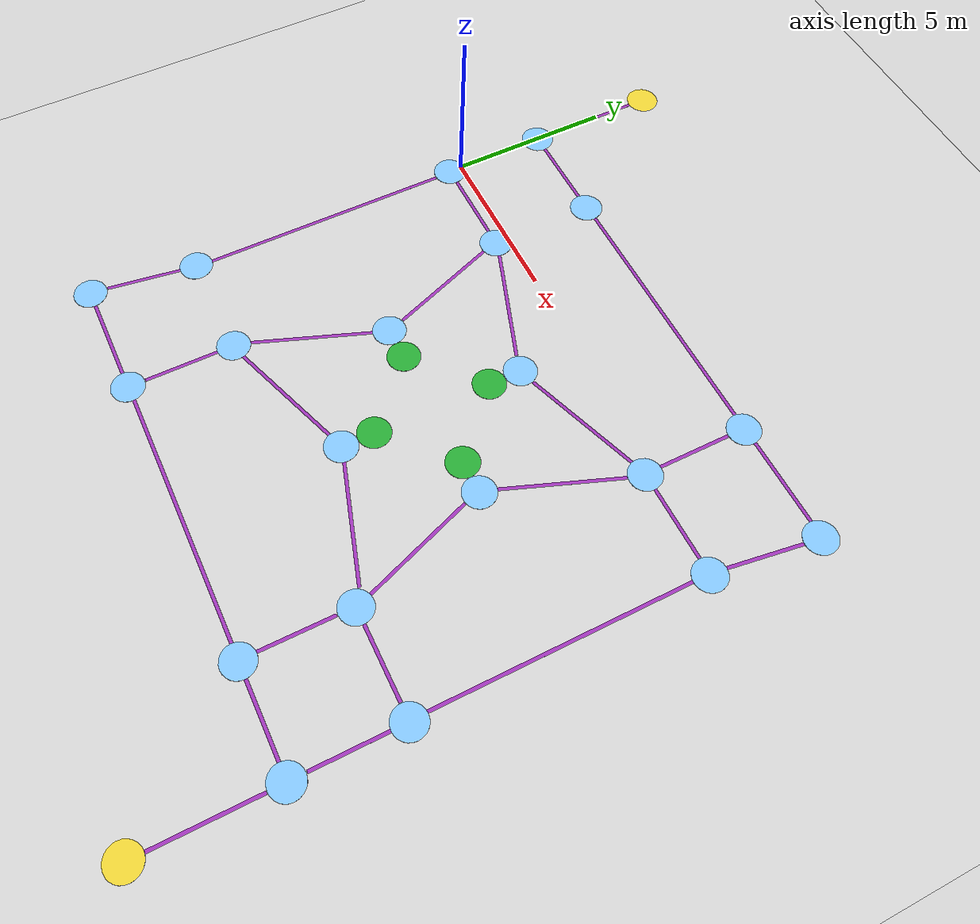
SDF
<sdf version="1.6">
 <world name="default">
  <scene><ambient>0.4 0.4 0.4 1</ambient><background>0.7 0.7 0.7 1</background><shadows>1</shadows></scene>
  <light name="sun" type="directional">
   <pose>0 0 10 0 -0 0</pose>
   <diffuse>0.8 0.8 0.8 1</diffuse>
   <specular>0.2 0.2 0.2 1</specular>
   <attenuation>
    <range>1000</range>
    <constant>0.9</constant>
    <linear>0.01</linear>
    <quadratic>0.001</quadratic>
   </attenuation>
   <direction>-0.5 0.1 -0.9</direction>
  </light>
  <model name="ground_plane">
   <static>1</static>
   <link name="link">
    <collision name="collision">
     <geometry><plane><normal>0 0 1</normal><size>100 100</size></plane></geometry>
     <surface>
      <contact><collide_bitmask>65535</collide_bitmask></contact>
      <friction><ode><mu>100</mu><mu2>50</mu2></ode></friction>
     </surface>
    </collision>
    <visual name="visual">
     <cast_shadows>0</cast_shadows>
     <geometry><plane><normal>0 0 1</normal><size>100 100</size></plane></geometry>
     <material>
      <script><uri>file://media/materials/scripts/gazebo.material</uri><name>Gazebo/Grey</name></script>
     </material>
    </visual>
   </link>
  </model>
  <physics name="default_physics" default="0" type="ode">
   <real_time_update_rate>1000</real_time_update_rate>
   <max_step_size>0.001</max_step_size>
   <real_time_factor>1</real_time_factor>
   <ode>
    <solver>
     <type>quick</type>
     <iters>150</iters>
     <precon_iters>0</precon_iters>
     <sor>1.4</sor>
     <use_dynamic_moi_rescaling>1</use_dynamic_moi_rescaling>
    </solver>
    <constraints>
     <cfm>1e-05</cfm>
     <erp>0.2</erp>
     <contact_max_correcting_vel>2000</contact_max_correcting_vel>
     <contact_surface_layer>0.01</contact_surface_layer>
    </constraints>
   </ode>
  </physics>
  <gravity>0 0 -9.8</gravity>
  <magnetic_field>6e-06 2.3e-05 -4.2e-05</magnetic_field>
  <atmosphere type="adiabatic"/>
  <audio><device>default</device></audio>
  <spherical_coordinates>
   <surface_model>EARTH_WGS84</surface_model>
   <latitude_deg>0</latitude_deg>
   <longitude_deg>0</longitude_deg>
   <elevation>0</elevation>
   <heading_deg>0</heading_deg>
  </spherical_coordinates>
  <model name="u1">
   <static>1</static>
   <pose>0 6.8 0 0 -0 0</pose>
   <link name="link">
    <inertial>
     <mass>1</mass>
     <inertia><ixx>0.145833</ixx><ixy>0</ixy><ixz>0</ixz><iyy>0.145833</iyy><iyz>0</iyz><izz>0.125</izz></inertia>
    </inertial>
    <collision name="collision">
     <geometry><cylinder><radius>0</radius><length>0</length></cylinder></geometry>
    </collision>
    <visual name="visual">
     <geometry><cylinder><radius>0.5</radius><length>9.555e-05</length></cylinder></geometry>
     <material>
      <script><name>Gazebo/ZincYellow</name><uri>file://media/materials/scripts/gazebo.material</uri></script>
     </material>
    </visual>
   </link>
  </model>
  <model name="u2">
   <static>1</static>
   <pose>15.2 -16.2 0 0 -0 0</pose>
   <link name="link">
    <inertial>
     <mass>1</mass>
     <inertia><ixx>0.145833</ixx><ixy>0</ixy><ixz>0</ixz><iyy>0.145833</iyy><iyz>0</iyz><izz>0.125</izz></inertia>
    </inertial>
    <collision name="collision">
     <geometry><cylinder><radius>0</radius><length>0</length></cylinder></geometry>
    </collision>
    <visual name="visual">
     <geometry><cylinder><radius>0.5</radius><length>0.006</length></cylinder></geometry>
     <material>
      <script><name>Gazebo/ZincYellow</name><uri>file://media/materials/scripts/gazebo.material</uri></script>
     </material>
    </visual>
   </link>
  </model>
  <model name="4">
   <static>1</static>
   <pose>0 2.8 0 0 -0 0</pose>
   <link name="link">
    <inertial>
     <mass>1</mass>
     <inertia><ixx>0.145833</ixx><ixy>0</ixy><ixz>0</ixz><iyy>0.145833</iyy><iyz>0</iyz><izz>0.125</izz></inertia>
    </inertial>
    <collision name="collision">
     <geometry><cylinder><radius>0</radius><length>0</length></cylinder></geometry>
    </collision>
    <visual name="visual">
     <geometry><cylinder><radius>0.5</radius><length>9.8418e-05</length></cylinder></geometry>
     <material>
      <script><name>Gazebo/SkyBlue</name><uri>file://media/materials/scripts/gazebo.material</uri></script>
     </material>
    </visual>
   </link>
  </model>
  <model name="5">
   <static>1</static>
   <pose>3.2 2.8 0 0 -0 0</pose>
   <link name="link">
    <inertial>
     <mass>1</mass>
     <inertia><ixx>0.145833</ixx><ixy>0</ixy><ixz>0</ixz><iyy>0.145833</iyy><iyz>0</iyz><izz>0.125</izz></inertia>
    </inertial>
    <collision name="collision">
     <geometry><cylinder><radius>0</radius><length>0</length></cylinder></geometry>
    </collision>
    <visual name="visual">
     <geometry><cylinder><radius>0.5</radius><length>0.006</length></cylinder></geometry>
     <material>
      <script><name>Gazebo/SkyBlue</name><uri>file://media/materials/scripts/gazebo.material</uri></script>
     </material>
    </visual>
   </link>
  </model>
  <model name="6">
   <static>1</static>
   <pose>12 2.8 0 0 -0 0</pose>
   <link name="link">
    <inertial>
     <mass>1</mass>
     <inertia><ixx>0.145833</ixx><ixy>0</ixy><ixz>0</ixz><iyy>0.145833</iyy><iyz>0</iyz><izz>0.125</izz></inertia>
    </inertial>
    <collision name="collision">
     <geometry><cylinder><radius>0</radius><length>0</length></cylinder></geometry>
    </collision>
    <visual name="visual">
     <geometry><cylinder><radius>0.5</radius><length>0.006</length></cylinder></geometry>
     <material>
      <script><name>Gazebo/SkyBlue</name><uri>file://media/materials/scripts/gazebo.material</uri></script>
     </material>
    </visual>
   </link>
  </model>
  <model name="7">
   <static>1</static>
   <pose>15.6 2.8 0 0 -0 0</pose>
   <link name="link">
    <inertial>
     <mass>1</mass>
     <inertia><ixx>0.145833</ixx><ixy>0</ixy><ixz>0</ixz><iyy>0.145833</iyy><iyz>0</iyz><izz>0.125</izz></inertia>
    </inertial>
    <collision name="collision">
     <geometry><cylinder><radius>0</radius><length>0</length></cylinder></geometry>
    </collision>
    <visual name="visual">
     <geometry><cylinder><radius>0.5</radius><length>0.006</length></cylinder></geometry>
     <material>
      <script><name>Gazebo/SkyBlue</name><uri>file://media/materials/scripts/gazebo.material</uri></script>
     </material>
    </visual>
   </link>
  </model>
  <model name="8">
   <static>1</static>
   <pose>15.2 -0.4 0 0 -0 0</pose>
   <link name="link">
    <inertial>
     <mass>1</mass>
     <inertia><ixx>0.145833</ixx><ixy>0</ixy><ixz>0</ixz><iyy>0.145833</iyy><iyz>0</iyz><izz>0.125</izz></inertia>
    </inertial>
    <collision name="collision">
     <geometry><cylinder><radius>0</radius><length>0</length></cylinder></geometry>
    </collision>
    <visual name="visual">
     <geometry><cylinder><radius>0.5</radius><length>0.006</length></cylinder></geometry>
     <material>
      <script><name>Gazebo/SkyBlue</name><uri>file://media/materials/scripts/gazebo.material</uri></script>
     </material>
    </visual>
   </link>
  </model>
  <model name="9">
   <static>1</static>
   <pose>15.2 -9 0 0 -0 0</pose>
   <link name="link">
    <inertial>
     <mass>1</mass>
     <inertia><ixx>0.145833</ixx><ixy>0</ixy><ixz>0</ixz><iyy>0.145833</iyy><iyz>0</iyz><izz>0.125</izz></inertia>
    </inertial>
    <collision name="collision">
     <geometry><cylinder><radius>0</radius><length>0</length></cylinder></geometry>
    </collision>
    <visual name="visual">
     <geometry><cylinder><radius>0.5</radius><length>0.006</length></cylinder></geometry>
     <material>
      <script><name>Gazebo/SkyBlue</name><uri>file://media/materials/scripts/gazebo.material</uri></script>
     </material>
    </visual>
   </link>
  </model>
  <model name="10">
   <static>1</static>
   <pose>15.2 -12.2 0 0 -0 0</pose>
   <link name="link">
    <inertial>
     <mass>1</mass>
     <inertia><ixx>0.145833</ixx><ixy>0</ixy><ixz>0</ixz><iyy>0.145833</iyy><iyz>0</iyz><izz>0.125</izz></inertia>
    </inertial>
    <collision name="collision">
     <geometry><cylinder><radius>0</radius><length>0</length></cylinder></geometry>
    </collision>
    <visual name="visual">
     <geometry><cylinder><radius>0.5</radius><length>0.006</length></cylinder></geometry>
     <material>
      <script><name>Gazebo/SkyBlue</name><uri>file://media/materials/scripts/gazebo.material</uri></script>
     </material>
    </visual>
   </link>
  </model>
  <model name="11">
   <static>1</static>
   <pose>12 -12.2 0 0 -0 0</pose>
   <link name="link">
    <inertial>
     <mass>1</mass>
     <inertia><ixx>0.145833</ixx><ixy>0</ixy><ixz>0</ixz><iyy>0.145833</iyy><iyz>0</iyz><izz>0.125</izz></inertia>
    </inertial>
    <collision name="collision">
     <geometry><cylinder><radius>0</radius><length>0</length></cylinder></geometry>
    </collision>
    <visual name="visual">
     <geometry><cylinder><radius>0.5</radius><length>0.006</length></cylinder></geometry>
     <material>
      <script><name>Gazebo/SkyBlue</name><uri>file://media/materials/scripts/gazebo.material</uri></script>
     </material>
    </visual>
   </link>
  </model>
  <model name="12">
   <static>1</static>
   <pose>3.2 -12.2 0 0 -0 0</pose>
   <link name="link">
    <inertial>
     <mass>1</mass>
     <inertia><ixx>0.145833</ixx><ixy>0</ixy><ixz>0</ixz><iyy>0.145833</iyy><iyz>0</iyz><izz>0.125</izz></inertia>
    </inertial>
    <collision name="collision">
     <geometry><cylinder><radius>0</radius><length>0</length></cylinder></geometry>
    </collision>
    <visual name="visual">
     <geometry><cylinder><radius>0.5</radius><length>0.006</length></cylinder></geometry>
     <material>
      <script><name>Gazebo/SkyBlue</name><uri>file://media/materials/scripts/gazebo.material</uri></script>
     </material>
    </visual>
   </link>
  </model>
  <model name="1">
   <static>1</static>
   <pose>-0.4 -12.2 0 0 -0 0</pose>
   <link name="link">
    <inertial>
     <mass>1</mass>
     <inertia><ixx>0.145833</ixx><ixy>0</ixy><ixz>0</ixz><iyy>0.145833</iyy><iyz>0</iyz><izz>0.125</izz></inertia>
    </inertial>
    <collision name="collision">
     <geometry><cylinder><radius>0</radius><length>0</length></cylinder></geometry>
    </collision>
    <visual name="visual">
     <geometry><cylinder><radius>0.5</radius><length>0.006</length></cylinder></geometry>
     <material>
      <script><name>Gazebo/SkyBlue</name><uri>file://media/materials/scripts/gazebo.material</uri></script>
     </material>
    </visual>
   </link>
  </model>
  <model name="2">
   <static>1</static>
   <pose>0 -9 0 0 -0 0</pose>
   <link name="link">
    <inertial>
     <mass>1</mass>
     <inertia><ixx>0.145833</ixx><ixy>0</ixy><ixz>0</ixz><iyy>0.145833</iyy><iyz>0</iyz><izz>0.125</izz></inertia>
    </inertial>
    <collision name="collision">
     <geometry><cylinder><radius>0</radius><length>0</length></cylinder></geometry>
    </collision>
    <visual name="visual">
     <geometry><cylinder><radius>0.5</radius><length>0.006</length></cylinder></geometry>
     <material>
      <script><name>Gazebo/SkyBlue</name><uri>file://media/materials/scripts/gazebo.material</uri></script>
     </material>
    </visual>
   </link>
  </model>
  <model name="3">
   <static>1</static>
   <pose>0 -0.4 0 0 -0 0</pose>
   <link name="link">
    <inertial>
     <mass>1</mass>
     <inertia><ixx>0.145833</ixx><ixy>0</ixy><ixz>0</ixz><iyy>0.145833</iyy><iyz>0</iyz><izz>0.125</izz></inertia>
    </inertial>
    <collision name="collision">
     <geometry><cylinder><radius>0</radius><length>0</length></cylinder></geometry>
    </collision>
    <visual name="visual">
     <geometry><cylinder><radius>0.5</radius><length>0.006</length></cylinder></geometry>
     <material>
      <script><name>Gazebo/SkyBlue</name><uri>file://media/materials/scripts/gazebo.material</uri></script>
     </material>
    </visual>
   </link>
  </model>
  <model name="21">
   <static>1</static>
   <pose>3.2 -9 0 0 -0 0</pose>
   <link name="link">
    <inertial>
     <mass>1</mass>
     <inertia><ixx>0.145833</ixx><ixy>0</ixy><ixz>0</ixz><iyy>0.145833</iyy><iyz>0</iyz><izz>0.125</izz></inertia>
    </inertial>
    <collision name="collision">
     <geometry><cylinder><radius>0</radius><length>0</length></cylinder></geometry>
    </collision>
    <visual name="visual">
     <geometry><cylinder><radius>0.5</radius><length>0.006</length></cylinder></geometry>
     <material>
      <script><name>Gazebo/SkyBlue</name><uri>file://media/materials/scripts/gazebo.material</uri></script>
     </material>
    </visual>
   </link>
  </model>
  <model name="22">
   <static>1</static>
   <pose>7.6 -7.5 0 0 -0 0</pose>
   <link name="link">
    <inertial>
     <mass>1</mass>
     <inertia><ixx>0.145833</ixx><ixy>0</ixy><ixz>0</ixz><iyy>0.145833</iyy><iyz>0</iyz><izz>0.125</izz></inertia>
    </inertial>
    <collision name="collision">
     <geometry><cylinder><radius>0</radius><length>0</length></cylinder></geometry>
    </collision>
    <visual name="visual">
     <geometry><cylinder><radius>0.5</radius><length>0.006</length></cylinder></geometry>
     <material>
      <script><name>Gazebo/SkyBlue</name><uri>file://media/materials/scripts/gazebo.material</uri></script>
     </material>
    </visual>
   </link>
  </model>
  <model name="23">
   <static>1</static>
   <pose>12 -9 0 0 -0 0</pose>
   <link name="link">
    <inertial>
     <mass>1</mass>
     <inertia><ixx>0.145833</ixx><ixy>0</ixy><ixz>0</ixz><iyy>0.145833</iyy><iyz>0</iyz><izz>0.125</izz></inertia>
    </inertial>
    <collision name="collision">
     <geometry><cylinder><radius>0</radius><length>0</length></cylinder></geometry>
    </collision>
    <visual name="visual">
     <geometry><cylinder><radius>0.5</radius><length>0.006</length></cylinder></geometry>
     <material>
      <script><name>Gazebo/SkyBlue</name><uri>file://media/materials/scripts/gazebo.material</uri></script>
     </material>
    </visual>
   </link>
  </model>
  <model name="24">
   <static>1</static>
   <pose>10.5 -4.7 0 0 -0 0</pose>
   <link name="link">
    <inertial>
     <mass>1</mass>
     <inertia><ixx>0.145833</ixx><ixy>0</ixy><ixz>0</ixz><iyy>0.145833</iyy><iyz>0</iyz><izz>0.125</izz></inertia>
    </inertial>
    <collision name="collision">
     <geometry><cylinder><radius>0</radius><length>0</length></cylinder></geometry>
    </collision>
    <visual name="visual">
     <geometry><cylinder><radius>0.5</radius><length>0.006</length></cylinder></geometry>
     <material>
      <script><name>Gazebo/SkyBlue</name><uri>file://media/materials/scripts/gazebo.material</uri></script>
     </material>
    </visual>
   </link>
  </model>
  <model name="25">
   <static>1</static>
   <pose>12 -0.4 0 0 -0 0</pose>
   <link name="link">
    <inertial>
     <mass>1</mass>
     <inertia><ixx>0.145833</ixx><ixy>0</ixy><ixz>0</ixz><iyy>0.145833</iyy><iyz>0</iyz><izz>0.125</izz></inertia>
    </inertial>
    <collision name="collision">
     <geometry><cylinder><radius>0</radius><length>0</length></cylinder></geometry>
    </collision>
    <visual name="visual">
     <geometry><cylinder><radius>0.5</radius><length>0.006</length></cylinder></geometry>
     <material>
      <script><name>Gazebo/SkyBlue</name><uri>file://media/materials/scripts/gazebo.material</uri></script>
     </material>
    </visual>
   </link>
  </model>
  <model name="26">
   <static>1</static>
   <pose>7.6 -1.9 0 0 -0 0</pose>
   <link name="link">
    <inertial>
     <mass>1</mass>
     <inertia><ixx>0.145833</ixx><ixy>0</ixy><ixz>0</ixz><iyy>0.145833</iyy><iyz>0</iyz><izz>0.125</izz></inertia>
    </inertial>
    <collision name="collision">
     <geometry><cylinder><radius>0</radius><length>0</length></cylinder></geometry>
    </collision>
    <visual name="visual">
     <geometry><cylinder><radius>0.5</radius><length>0.006</length></cylinder></geometry>
     <material>
      <script><name>Gazebo/SkyBlue</name><uri>file://media/materials/scripts/gazebo.material</uri></script>
     </material>
    </visual>
   </link>
  </model>
  <model name="27">
   <static>1</static>
   <pose>3.2 -0.4 0 0 -0 0</pose>
   <link name="link">
    <inertial>
     <mass>1</mass>
     <inertia><ixx>0.145833</ixx><ixy>0</ixy><ixz>0</ixz><iyy>0.145833</iyy><iyz>0</iyz><izz>0.125</izz></inertia>
    </inertial>
    <collision name="collision">
     <geometry><cylinder><radius>0</radius><length>0</length></cylinder></geometry>
    </collision>
    <visual name="visual">
     <geometry><cylinder><radius>0.5</radius><length>0.006</length></cylinder></geometry>
     <material>
      <script><name>Gazebo/SkyBlue</name><uri>file://media/materials/scripts/gazebo.material</uri></script>
     </material>
    </visual>
   </link>
  </model>
  <model name="28">
   <static>1</static>
   <pose>4.7 -4.7 0 0 -0 0</pose>
   <link name="link">
    <inertial>
     <mass>1</mass>
     <inertia><ixx>0.145833</ixx><ixy>0</ixy><ixz>0</ixz><iyy>0.145833</iyy><iyz>0</iyz><izz>0.125</izz></inertia>
    </inertial>
    <collision name="collision">
     <geometry><cylinder><radius>0</radius><length>0</length></cylinder></geometry>
    </collision>
    <visual name="visual">
     <geometry><cylinder><radius>0.5</radius><length>0.006</length></cylinder></geometry>
     <material>
      <script><name>Gazebo/SkyBlue</name><uri>file://media/materials/scripts/gazebo.material</uri></script>
     </material>
    </visual>
   </link>
  </model>
  <model name="g1">
   <static>1</static>
   <pose>7.6 -6.5 0 0 -0 0</pose>
   <link name="link">
    <inertial>
     <mass>1</mass>
     <inertia><ixx>0.145833</ixx><ixy>0</ixy><ixz>0</ixz><iyy>0.145833</iyy><iyz>0</iyz><izz>0.125</izz></inertia>
    </inertial>
    <collision name="collision">
     <geometry><cylinder><radius>0</radius><length>0</length></cylinder></geometry>
    </collision>
    <visual name="visual">
     <geometry><cylinder><radius>0.5</radius><length>0.006</length></cylinder></geometry>
     <material>
      <script><name>Gazebo/GreenGlow</name><uri>file://media/materials/scripts/gazebo.material</uri></script>
     </material>
    </visual>
   </link>
  </model>
  <model name="g2">
   <static>1</static>
   <pose>9.5 -4.7 0 0 -0 0</pose>
   <link name="link">
    <inertial>
     <mass>1</mass>
     <inertia><ixx>0.145833</ixx><ixy>0</ixy><ixz>0</ixz><iyy>0.145833</iyy><iyz>0</iyz><izz>0.125</izz></inertia>
    </inertial>
    <collision name="collision">
     <geometry><cylinder><radius>0</radius><length>0</length></cylinder></geometry>
    </collision>
    <visual name="visual">
     <geometry><cylinder><radius>0.5</radius><length>0.006</length></cylinder></geometry>
     <material>
      <script><name>Gazebo/GreenGlow</name><uri>file://media/materials/scripts/gazebo.material</uri></script>
     </material>
    </visual>
   </link>
  </model>
  <model name="g3">
   <static>1</static>
   <pose>7.6 -2.9 0 0 -0 0</pose>
   <link name="link">
    <inertial>
     <mass>1</mass>
     <inertia><ixx>0.145833</ixx><ixy>0</ixy><ixz>0</ixz><iyy>0.145833</iyy><iyz>0</iyz><izz>0.125</izz></inertia>
    </inertial>
    <collision name="collision">
     <geometry><cylinder><radius>0</radius><length>0</length></cylinder></geometry>
    </collision>
    <visual name="visual">
     <geometry><cylinder><radius>0.5</radius><length>0.006</length></cylinder></geometry>
     <material>
      <script><name>Gazebo/GreenGlow</name><uri>file://media/materials/scripts/gazebo.material</uri></script>
     </material>
    </visual>
   </link>
  </model>
  <model name="g4">
   <static>1</static>
   <pose>5.7 -4.7 0 0 -0 0</pose>
   <link name="link">
    <inertial>
     <mass>1</mass>
     <inertia><ixx>0.145833</ixx><ixy>0</ixy><ixz>0</ixz><iyy>0.145833</iyy><iyz>0</iyz><izz>0.125</izz></inertia>
    </inertial>
    <collision name="collision">
     <geometry><cylinder><radius>0</radius><length>0</length></cylinder></geometry>
    </collision>
    <visual name="visual">
     <geometry><cylinder><radius>0.5</radius><length>0.006</length></cylinder></geometry>
     <material>
      <script><name>Gazebo/GreenGlow</name><uri>file://media/materials/scripts/gazebo.material</uri></script>
     </material>
    </visual>
   </link>
  </model>
  <model name="t_u1_4">
   <pose>0.000496 4.79999 0 0 0 0</pose>
   <link name="link">
    <inertial>
     <mass>1</mass>
     <inertia>
      <ixx>0.166667</ixx>
      <ixy>0</ixy>
      <ixz>0</ixz>
      <iyy>0.166667</iyy>
      <iyz>0</iyz>
      <izz>0.166667</izz>
     </inertia>
    </inertial>
    <collision name="collision"><geometry><box><size>0.1 2.99289 0.0001</size></box></geometry></collision>
    <visual name="visual">
     <geometry><box><size>0.1 2.99289 0.0001</size></box></geometry>
     <material>
      <script><name>Gazebo/PurpleGlow</name><uri>file://media/materials/scripts/gazebo.material</uri></script>
     </material>
    </visual>
   </link>
  </model>
  <model name="t_27_28">
   <pose>3.91868 -2.48695 0 0 0 0.351818</pose>
   <link name="link">
    <inertial>
     <mass>1</mass>
     <inertia>
      <ixx>0.166667</ixx>
      <ixy>0</ixy>
      <ixz>0</ixz>
      <iyy>0.166667</iyy>
      <iyz>0</iyz>
      <izz>0.166667</izz>
     </inertia>
    </inertial>
    <collision name="collision"><geometry><box><size>0.1 3.64513 0.0001</size></box></geometry></collision>
    <visual name="visual">
     <geometry><box><size>0.1 3.64513 0.0001</size></box></geometry>
     <material>
      <script><name>Gazebo/PurpleGlow</name><uri>file://media/materials/scripts/gazebo.material</uri></script>
     </material>
    </visual>
   </link>
  </model>
  <model name="t_28_21">
   <pose>3.93313 -6.85718 0 0 0 -0.354086</pose>
   <link name="link">
    <inertial>
     <mass>1</mass>
     <inertia>
      <ixx>0.166667</ixx>
      <ixy>0</ixy>
      <ixz>0</ixz>
      <iyy>0.166667</iyy>
      <iyz>0</iyz>
      <izz>0.166667</izz>
     </inertia>
    </inertial>
    <collision name="collision"><geometry><box><size>0.1 3.64514 0.0001</size></box></geometry></collision>
    <visual name="visual">
     <geometry><box><size>0.1 3.64514 0.0001</size></box></geometry>
     <material>
      <script><name>Gazebo/PurpleGlow</name><uri>file://media/materials/scripts/gazebo.material</uri></script>
     </material>
    </visual>
   </link>
  </model>
  <model name="t_21_22">
   <pose>5.39705 -8.26701 0 0 0 1.91176</pose>
   <link name="link">
    <inertial>
     <mass>1</mass>
     <inertia>
      <ixx>0.166667</ixx>
      <ixy>0</ixy>
      <ixz>0</ixz>
      <iyy>0.166667</iyy>
      <iyz>0</iyz>
      <izz>0.166667</izz>
     </inertia>
    </inertial>
    <collision name="collision"><geometry><box><size>0.1 3.64514 0.0001</size></box></geometry></collision>
    <visual name="visual">
     <geometry><box><size>0.1 3.64514 0.0001</size></box></geometry>
     <material>
      <script><name>Gazebo/PurpleGlow</name><uri>file://media/materials/scripts/gazebo.material</uri></script>
     </material>
    </visual>
   </link>
  </model>
  <model name="t_22_23">
   <pose>9.81397 -8.16396 0 0 0 1.26708</pose>
   <link name="link">
    <inertial>
     <mass>1</mass>
     <inertia>
      <ixx>0.166667</ixx>
      <ixy>0</ixy>
      <ixz>0</ixz>
      <iyy>0.166667</iyy>
      <iyz>0</iyz>
      <izz>0.166667</izz>
     </inertia>
    </inertial>
    <collision name="collision"><geometry><box><size>0.1 3.64514 0.0001</size></box></geometry></collision>
    <visual name="visual">
     <geometry><box><size>0.1 3.64514 0.0001</size></box></geometry>
     <material>
      <script><name>Gazebo/PurpleGlow</name><uri>file://media/materials/scripts/gazebo.material</uri></script>
     </material>
    </visual>
   </link>
  </model>
  <model name="t_24_25">
   <pose>11.2616 -2.52895 0 0 0 -0.354086</pose>
   <link name="link">
    <inertial>
     <mass>1</mass>
     <inertia>
      <ixx>0.166667</ixx>
      <ixy>0</ixy>
      <ixz>0</ixz>
      <iyy>0.166667</iyy>
      <iyz>0</iyz>
      <izz>0.166667</izz>
     </inertia>
    </inertial>
    <collision name="collision"><geometry><box><size>0.1 3.64514 0.0001</size></box></geometry></collision>
    <visual name="visual">
     <geometry><box><size>0.1 3.64514 0.0001</size></box></geometry>
     <material>
      <script><name>Gazebo/PurpleGlow</name><uri>file://media/materials/scripts/gazebo.material</uri></script>
     </material>
    </visual>
   </link>
  </model>
  <model name="t_23_24">
   <pose>11.2566 -6.90832 0 0 0 0.351818</pose>
   <link name="link">
    <inertial>
     <mass>1</mass>
     <inertia>
      <ixx>0.166667</ixx>
      <ixy>0</ixy>
      <ixz>0</ixz>
      <iyy>0.166667</iyy>
      <iyz>0</iyz>
      <izz>0.166667</izz>
     </inertia>
    </inertial>
    <collision name="collision"><geometry><box><size>0.1 3.64514 0.0001</size></box></geometry></collision>
    <visual name="visual">
     <geometry><box><size>0.1 3.64514 0.0001</size></box></geometry>
     <material>
      <script><name>Gazebo/PurpleGlow</name><uri>file://media/materials/scripts/gazebo.material</uri></script>
     </material>
    </visual>
   </link>
  </model>
  <model name="t_25_26">
   <pose>9.80957 -1.14055 0 0 0 1.91135</pose>
   <link name="link">
    <inertial>
     <mass>1</mass>
     <inertia>
      <ixx>0.166667</ixx>
      <ixy>0</ixy>
      <ixz>0</ixz>
      <iyy>0.166667</iyy>
      <iyz>0</iyz>
      <izz>0.166667</izz>
     </inertia>
    </inertial>
    <collision name="collision"><geometry><box><size>0.1 3.64514 0.0001</size></box></geometry></collision>
    <visual name="visual">
     <geometry><box><size>0.1 3.64514 0.0001</size></box></geometry>
     <material>
      <script><name>Gazebo/PurpleGlow</name><uri>file://media/materials/scripts/gazebo.material</uri></script>
     </material>
    </visual>
   </link>
  </model>
  <model name="t_26_27">
   <pose>5.37582 -1.13541 0 0 0 1.22489</pose>
   <link name="link">
    <inertial>
     <mass>1</mass>
     <inertia>
      <ixx>0.166667</ixx>
      <ixy>0</ixy>
      <ixz>0</ixz>
      <iyy>0.166667</iyy>
      <iyz>0</iyz>
      <izz>0.166667</izz>
     </inertia>
    </inertial>
    <collision name="collision"><geometry><box><size>0.1 3.64514 0.0001</size></box></geometry></collision>
    <visual name="visual">
     <geometry><box><size>0.1 3.64514 0.0001</size></box></geometry>
     <material>
      <script><name>Gazebo/PurpleGlow</name><uri>file://media/materials/scripts/gazebo.material</uri></script>
     </material>
    </visual>
   </link>
  </model>
  <model name="t_10_u2">
   <pose>15.2147 -14.206 0 0 0 0</pose>
   <link name="link">
    <inertial>
     <mass>1</mass>
     <inertia>
      <ixx>0.166667</ixx>
      <ixy>0</ixy>
      <ixz>0</ixz>
      <iyy>0.166667</iyy>
      <iyz>0</iyz>
      <izz>0.166667</izz>
     </inertia>
    </inertial>
    <collision name="collision"><geometry><box><size>0.1 2.99289 0.0001</size></box></geometry></collision>
    <visual name="visual">
     <geometry><box><size>0.1 2.99289 0.0001</size></box></geometry>
     <material>
      <script><name>Gazebo/PurpleGlow</name><uri>file://media/materials/scripts/gazebo.material</uri></script>
     </material>
    </visual>
   </link>
  </model>
  <model name="t_4_3">
   <pose>0 1.19089 0 0 0 0</pose>
   <link name="link">
    <inertial>
     <mass>1</mass>
     <inertia>
      <ixx>0.166667</ixx>
      <ixy>0</ixy>
      <ixz>0</ixz>
      <iyy>0.166667</iyy>
      <iyz>0</iyz>
      <izz>0.166667</izz>
     </inertia>
    </inertial>
    <collision name="collision"><geometry><box><size>0.1 2.19728 0.0001</size></box></geometry></collision>
    <visual name="visual">
     <geometry><box><size>0.1 2.19728 0.0001</size></box></geometry>
     <material>
      <script><name>Gazebo/PurpleGlow</name><uri>file://media/materials/scripts/gazebo.material</uri></script>
     </material>
    </visual>
   </link>
  </model>
  <model name="t_5_27">
   <pose>11.9772 -10.6174 0 0 0 0</pose>
   <link name="link">
    <inertial>
     <mass>1</mass>
     <inertia>
      <ixx>0.166667</ixx>
      <ixy>0</ixy>
      <ixz>0</ixz>
      <iyy>0.166667</iyy>
      <iyz>0</iyz>
      <izz>0.166667</izz>
     </inertia>
    </inertial>
    <collision name="collision"><geometry><box><size>0.1 2.19728 0.0001</size></box></geometry></collision>
    <visual name="visual">
     <geometry><box><size>0.1 2.19728 0.0001</size></box></geometry>
     <material>
      <script><name>Gazebo/PurpleGlow</name><uri>file://media/materials/scripts/gazebo.material</uri></script>
     </material>
    </visual>
   </link>
  </model>
  <model name="t_4_5">
   <pose>1.60065 2.8093 0 0 0 1.57</pose>
   <link name="link">
    <inertial>
     <mass>1</mass>
     <inertia>
      <ixx>0.166667</ixx>
      <ixy>0</ixy>
      <ixz>0</ixz>
      <iyy>0.166667</iyy>
      <iyz>0</iyz>
      <izz>0.166667</izz>
     </inertia>
    </inertial>
    <collision name="collision"><geometry><box><size>0.1 2.23191 0.0001</size></box></geometry></collision>
    <visual name="visual">
     <geometry><box><size>0.1 2.23191 0.0001</size></box></geometry>
     <material>
      <script><name>Gazebo/PurpleGlow</name><uri>file://media/materials/scripts/gazebo.material</uri></script>
     </material>
    </visual>
   </link>
  </model>
  <model name="t_3_27">
   <pose>1.59151 -0.39164 0 0 0 1.57</pose>
   <link name="link">
    <inertial>
     <mass>1</mass>
     <inertia>
      <ixx>0.166667</ixx>
      <ixy>0</ixy>
      <ixz>0</ixz>
      <iyy>0.166667</iyy>
      <iyz>0</iyz>
      <izz>0.166667</izz>
     </inertia>
    </inertial>
    <collision name="collision"><geometry><box><size>0.1 2.23192 0.0001</size></box></geometry></collision>
    <visual name="visual">
     <geometry><box><size>0.1 2.23192 0.0001</size></box></geometry>
     <material>
      <script><name>Gazebo/PurpleGlow</name><uri>file://media/materials/scripts/gazebo.material</uri></script>
     </material>
    </visual>
   </link>
  </model>
  <model name="t_23_9">
   <pose>13.5737 -8.99615 0 0 0 1.57</pose>
   <link name="link">
    <inertial>
     <mass>1</mass>
     <inertia>
      <ixx>0.166667</ixx>
      <ixy>0</ixy>
      <ixz>0</ixz>
      <iyy>0.166667</iyy>
      <iyz>0</iyz>
      <izz>0.166667</izz>
     </inertia>
    </inertial>
    <collision name="collision"><geometry><box><size>0.1 2.23192 0.0001</size></box></geometry></collision>
    <visual name="visual">
     <geometry><box><size>0.1 2.23192 0.0001</size></box></geometry>
     <material>
      <script><name>Gazebo/PurpleGlow</name><uri>file://media/materials/scripts/gazebo.material</uri></script>
     </material>
    </visual>
   </link>
  </model>
  <model name="t_11_10">
   <pose>13.6163 -12.1925 0 0 -0 1.57</pose>
   <link name="link">
    <inertial>
     <mass>1</mass>
     <inertia>
      <ixx>0.166667</ixx>
      <ixy>0</ixy>
      <ixz>0</ixz>
      <iyy>0.166667</iyy>
      <iyz>0</iyz>
      <izz>0.166667</izz>
     </inertia>
    </inertial>
    <collision name="collision"><geometry><box><size>0.1 2.23192 0.0001</size></box></geometry></collision>
    <visual name="visual">
     <geometry><box><size>0.1 2.23192 0.0001</size></box></geometry>
     <material>
      <script><name>Gazebo/PurpleGlow</name><uri>file://media/materials/scripts/gazebo.material</uri></script>
     </material>
    </visual>
   </link>
  </model>
  <model name="t_25_8">
   <pose>13.5816 -0.393033 0 0 0 1.57</pose>
   <link name="link">
    <inertial>
     <mass>1</mass>
     <inertia>
      <ixx>0.166667</ixx>
      <ixy>0</ixy>
      <ixz>0</ixz>
      <iyy>0.166667</iyy>
      <iyz>0</iyz>
      <izz>0.166667</izz>
     </inertia>
    </inertial>
    <collision name="collision"><geometry><box><size>0.1 2.23192 0.0001</size></box></geometry></collision>
    <visual name="visual">
     <geometry><box><size>0.1 2.23192 0.0001</size></box></geometry>
     <material>
      <script><name>Gazebo/PurpleGlow</name><uri>file://media/materials/scripts/gazebo.material</uri></script>
     </material>
    </visual>
   </link>
  </model>
  <model name="t_25_8">
   <pose>13.5816 -0.393033 0 0 0 1.57</pose>
   <link name="link">
    <inertial>
     <mass>1</mass>
     <inertia>
      <ixx>0.166667</ixx>
      <ixy>0</ixy>
      <ixz>0</ixz>
      <iyy>0.166667</iyy>
      <iyz>0</iyz>
      <izz>0.166667</izz>
     </inertia>
    </inertial>
    <collision name="collision"><geometry><box><size>0.1 2.23192 0.0001</size></box></geometry></collision>
    <visual name="visual">
     <geometry><box><size>0.1 2.23192 0.0001</size></box></geometry>
     <material>
      <script><name>Gazebo/PurpleGlow</name><uri>file://media/materials/scripts/gazebo.material</uri></script>
     </material>
    </visual>
   </link>
  </model>
  <model name="t_6_25">
   <pose>11.9808 1.19157 0 0 0 0</pose>
   <link name="link">
    <inertial>
     <mass>1</mass>
     <inertia>
      <ixx>0.166667</ixx>
      <ixy>0</ixy>
      <ixz>0</ixz>
      <iyy>0.166667</iyy>
      <iyz>0</iyz>
      <izz>0.166667</izz>
     </inertia>
    </inertial>
    <collision name="collision"><geometry><box><size>0.1 2.19728 0.0001</size></box></geometry></collision>
    <visual name="visual">
     <geometry><box><size>0.1 2.19728 0.0001</size></box></geometry>
     <material>
      <script><name>Gazebo/PurpleGlow</name><uri>file://media/materials/scripts/gazebo.material</uri></script>
     </material>
    </visual>
   </link>
  </model>
  <model name="t_5_27">
   <pose>11.9772 -10.6174 0 0 0 0</pose>
   <link name="link">
    <inertial>
     <mass>1</mass>
     <inertia>
      <ixx>0.166667</ixx>
      <ixy>0</ixy>
      <ixz>0</ixz>
      <iyy>0.166667</iyy>
      <iyz>0</iyz>
      <izz>0.166667</izz>
     </inertia>
    </inertial>
    <collision name="collision"><geometry><box><size>0.1 2.19728 0.0001</size></box></geometry></collision>
    <visual name="visual">
     <geometry><box><size>0.1 2.19728 0.0001</size></box></geometry>
     <material>
      <script><name>Gazebo/PurpleGlow</name><uri>file://media/materials/scripts/gazebo.material</uri></script>
     </material>
    </visual>
   </link>
  </model>
  <model name="t_9_10">
   <pose>15.1988 -10.5776 0 0 0 0</pose>
   <link name="link">
    <inertial>
     <mass>1</mass>
     <inertia>
      <ixx>0.166667</ixx>
      <ixy>0</ixy>
      <ixz>0</ixz>
      <iyy>0.166667</iyy>
      <iyz>0</iyz>
      <izz>0.166667</izz>
     </inertia>
    </inertial>
    <collision name="collision"><geometry><box><size>0.1 2.19728 0.0001</size></box></geometry></collision>
    <visual name="visual">
     <geometry><box><size>0.1 2.19728 0.0001</size></box></geometry>
     <material>
      <script><name>Gazebo/PurpleGlow</name><uri>file://media/materials/scripts/gazebo.material</uri></script>
     </material>
    </visual>
   </link>
  </model>
  <model name="t_21_12">
   <pose>3.20755 -10.5802 0 0 0 0</pose>
   <link name="link">
    <inertial>
     <mass>1</mass>
     <inertia>
      <ixx>0.166667</ixx>
      <ixy>0</ixy>
      <ixz>0</ixz>
      <iyy>0.166667</iyy>
      <iyz>0</iyz>
      <izz>0.166667</izz>
     </inertia>
    </inertial>
    <collision name="collision"><geometry><box><size>0.1 2.19728 0.0001</size></box></geometry></collision>
    <visual name="visual">
     <geometry><box><size>0.1 2.19728 0.0001</size></box></geometry>
     <material>
      <script><name>Gazebo/PurpleGlow</name><uri>file://media/materials/scripts/gazebo.material</uri></script>
     </material>
    </visual>
   </link>
  </model>
  <model name="t_2_1">
   <pose>-0.20358 -10.5751 0 0 0 -0.144319</pose>
   <link name="link">
    <inertial>
     <mass>1</mass>
     <inertia>
      <ixx>0.166667</ixx>
      <ixy>0</ixy>
      <ixz>0</ixz>
      <iyy>0.166667</iyy>
      <iyz>0</iyz>
      <izz>0.166667</izz>
     </inertia>
    </inertial>
    <collision name="collision"><geometry><box><size>0.1 2.23521 0.0001</size></box></geometry></collision>
    <visual name="visual">
     <geometry><box><size>0.1 2.23521 0.0001</size></box></geometry>
     <material>
      <script><name>Gazebo/PurpleGlow</name><uri>file://media/materials/scripts/gazebo.material</uri></script>
     </material>
    </visual>
   </link>
  </model>
  <model name="t_7_8">
   <pose>15.3926 1.19138 0 0 0 -0.144319</pose>
   <link name="link">
    <inertial>
     <mass>1</mass>
     <inertia>
      <ixx>0.166667</ixx>
      <ixy>0</ixy>
      <ixz>0</ixz>
      <iyy>0.166667</iyy>
      <iyz>0</iyz>
      <izz>0.166667</izz>
     </inertia>
    </inertial>
    <collision name="collision"><geometry><box><size>0.1 2.2352 0.0001</size></box></geometry></collision>
    <visual name="visual">
     <geometry><box><size>0.1 2.2352 0.0001</size></box></geometry>
     <material>
      <script><name>Gazebo/PurpleGlow</name><uri>file://media/materials/scripts/gazebo.material</uri></script>
     </material>
    </visual>
   </link>
  </model>
  <model name="t_6_7">
   <pose>13.7751 2.83881 0 0 0 1.57</pose>
   <link name="link">
    <inertial>
     <mass>1</mass>
     <inertia>
      <ixx>0.166667</ixx>
      <ixy>0</ixy>
      <ixz>0</ixz>
      <iyy>0.166667</iyy>
      <iyz>0</iyz>
      <izz>0.166667</izz>
     </inertia>
    </inertial>
    <collision name="collision"><geometry><box><size>0.1 2.70455 0.0001</size></box></geometry></collision>
    <visual name="visual">
     <geometry><box><size>0.1 2.70455 0.0001</size></box></geometry>
     <material>
      <script><name>Gazebo/PurpleGlow</name><uri>file://media/materials/scripts/gazebo.material</uri></script>
     </material>
    </visual>
   </link>
  </model>
  <model name="t_1_12">
   <pose>1.45583 -12.2002 0 0 0 1.57</pose>
   <link name="link">
    <inertial>
     <mass>1</mass>
     <inertia>
      <ixx>0.166667</ixx>
      <ixy>0</ixy>
      <ixz>0</ixz>
      <iyy>0.166667</iyy>
      <iyz>0</iyz>
      <izz>0.166667</izz>
     </inertia>
    </inertial>
    <collision name="collision"><geometry><box><size>0.1 2.70456 0.0001</size></box></geometry></collision>
    <visual name="visual">
     <geometry><box><size>0.1 2.70456 0.0001</size></box></geometry>
     <material>
      <script><name>Gazebo/PurpleGlow</name><uri>file://media/materials/scripts/gazebo.material</uri></script>
     </material>
    </visual>
   </link>
  </model>
  <model name="t_12_11">
   <pose>7.60454 -12.1839 0 0 0 1.57</pose>
   <link name="link">
    <inertial>
     <mass>1</mass>
     <inertia>
      <ixx>0.166667</ixx>
      <ixy>0</ixy>
      <ixz>0</ixz>
      <iyy>0.166667</iyy>
      <iyz>0</iyz>
      <izz>0.166667</izz>
     </inertia>
    </inertial>
    <collision name="collision"><geometry><box><size>0.1 8.09245 0.0001</size></box></geometry></collision>
    <visual name="visual">
     <geometry><box><size>0.1 8.09245 0.0001</size></box></geometry>
     <material>
      <script><name>Gazebo/PurpleGlow</name><uri>file://media/materials/scripts/gazebo.material</uri></script>
     </material>
    </visual>
   </link>
  </model>
  <model name="t_5_6">
   <pose>7.4927 2.83444 0 0 0 1.57</pose>
   <link name="link">
    <inertial>
     <mass>1</mass>
     <inertia>
      <ixx>0.166667</ixx>
      <ixy>0</ixy>
      <ixz>0</ixz>
      <iyy>0.166667</iyy>
      <iyz>0</iyz>
      <izz>0.166667</izz>
     </inertia>
    </inertial>
    <collision name="collision"><geometry><box><size>0.1 8.09245 0.0001</size></box></geometry></collision>
    <visual name="visual">
     <geometry><box><size>0.1 8.09245 0.0001</size></box></geometry>
     <material>
      <script><name>Gazebo/PurpleGlow</name><uri>file://media/materials/scripts/gazebo.material</uri></script>
     </material>
    </visual>
   </link>
  </model>
  <model name="t_8_9">
   <pose>15.1685 -4.81866 0 0 0 0</pose>
   <link name="link">
    <inertial>
     <mass>1</mass>
     <inertia>
      <ixx>0.166667</ixx>
      <ixy>0</ixy>
      <ixz>0</ixz>
      <iyy>0.166667</iyy>
      <iyz>0</iyz>
      <izz>0.166667</izz>
     </inertia>
    </inertial>
    <collision name="collision"><geometry><box><size>0.1 8.09245 0.0001</size></box></geometry></collision>
    <visual name="visual">
     <geometry><box><size>0.1 8.09245 0.0001</size></box></geometry>
     <material>
      <script><name>Gazebo/PurpleGlow</name><uri>file://media/materials/scripts/gazebo.material</uri></script>
     </material>
    </visual>
   </link>
  </model>
  <model name="t_3_2">
   <pose>0.044116 -4.96504 0 0 0 0</pose>
   <link name="link">
    <inertial>
     <mass>1</mass>
     <inertia>
      <ixx>0.166667</ixx>
      <ixy>0</ixy>
      <ixz>0</ixz>
      <iyy>0.166667</iyy>
      <iyz>0</iyz>
      <izz>0.166667</izz>
     </inertia>
    </inertial>
    <collision name="collision"><geometry><box><size>0.1 8.09245 0.0001</size></box></geometry></collision>
    <visual name="visual">
     <geometry><box><size>0.1 8.09245 0.0001</size></box></geometry>
     <material>
      <script><name>Gazebo/PurpleGlow</name><uri>file://media/materials/scripts/gazebo.material</uri></script>
     </material>
    </visual>
   </link>
  </model>
 </world>
</sdf>
